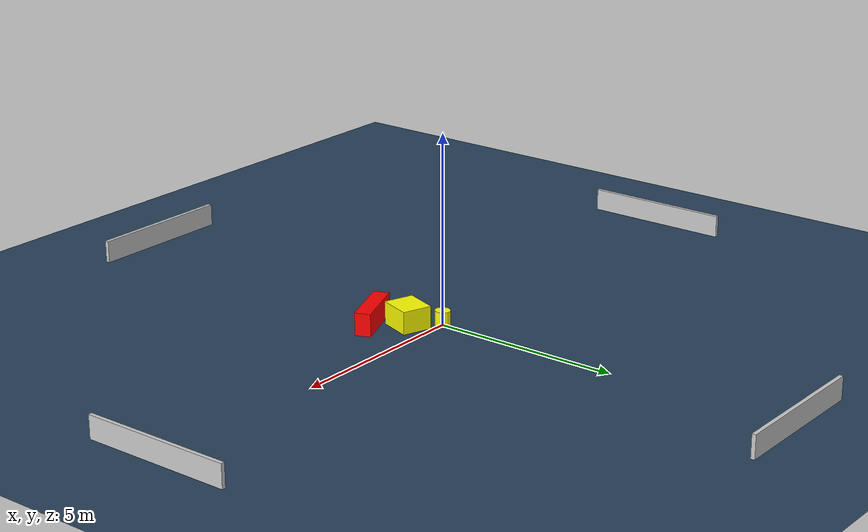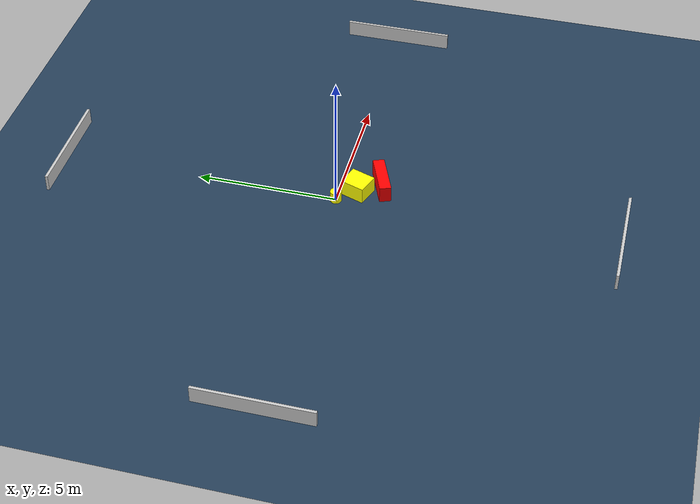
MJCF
<?xml version="1.0" ?>
<mujoco model="generated_environment">
  <option timestep="0.01" integrator="RK4" cone="elliptic"/>
  <default>
    <geom density="1"/>
  </default>
  <asset>
    <texture builtin="gradient" height="3072" name="skybox" rgb1="0.3 0.5 0.7" rgb2="0 0 0" type="skybox" width="512"/>
    <texture builtin="checker" height="300" name="groundplane" rgb1="0.2 0.3 0.4" rgb2="0.1 0.2 0.3" type="2d" width="300"/>
    <material name="groundplane" reflectance="0.2" texrepeat="5 5" texture="groundplane"/>
  </asset>
  <worldbody>
    <light dir="0 0 -1" directional="true" pos="0 0 1.5"/>
    <geom condim="3" friction="0.5 0.005 0.001" material="groundplane" name="floor" pos="0 0 0" size="0 0 0.05" type="plane"/>
    <body name="walls">
      <geom name="wall_1" condim="4" pos="-10.0 0.0 0.3" rgba="0.800000011920929 0.800000011920929 0.800000011920929 1.0" size="0.05 2.0 0.3" type="box"/>
      <geom name="wall_2" condim="4" pos="10.0 0.0 0.3" rgba="0.800000011920929 0.800000011920929 0.800000011920929 1.0" size="0.05 2.0 0.3" type="box"/>
      <geom name="wall_3" condim="4" pos="0.0 -10.0 0.3" rgba="0.800000011920929 0.800000011920929 0.800000011920929 1.0" size="2.0 0.05 0.3" type="box"/>
      <geom name="wall_4" condim="4" pos="0.0 10.0 0.3" rgba="0.800000011920929 0.800000011920929 0.800000011920929 1.0" size="2.0 0.05 0.3" type="box"/>
    </body>
    <body name="robot">
      <joint name="joint_x" type="slide" pos="0 0 0" axis="1 0 0"/>
      <joint name="joint_y" type="slide" pos="0 0 0" axis="0 1 0"/>
      <geom name="robot" type="cylinder" pos="0.0 0.0 0.2" size="0.2 0.2 0.0" mass="5.0" friction="1.0 0.005 0.0001" condim="4" rgba="1.0 1.0 0.0 1.0"/>
    </body>
    <body name="obstacle_1_movable">
      <geom name="obstacle_1_movable" condim="4" pos="0.5955590659852186 -0.6403981055669729 0.3" euler="0 0 250.39728893376878" friction="0.0 0.005 0.001" rgba="1.0 1.0 0.0 1.0" size="0.44638937568111847 0.39880747744123246 0.3" type="box" mass="0.1"/>
      <joint type="free"/>
    </body>
    <body name="obstacle_2_static">
      <geom name="obstacle_2_static" condim="4" pos="1.087156617628319 -1.3946422535716332 0.3" euler="0 0 112.03257048768879" friction="0.0 0.005 0.001" rgba="1.0 0.0 0.0 1.0" size="0.20650265360526868 0.7816084394159826 0.3" type="box"/>
    </body>
  </worldbody>
  <actuator>
    <motor name="actuator_x" joint="joint_x" gear="1" ctrlrange="-1 1"/>
    <motor name="actuator_y" joint="joint_y" gear="1" ctrlrange="-1 1"/>
  </actuator>
</mujoco>
